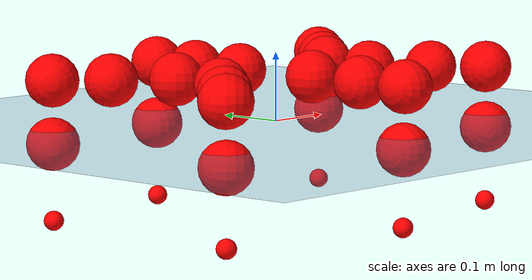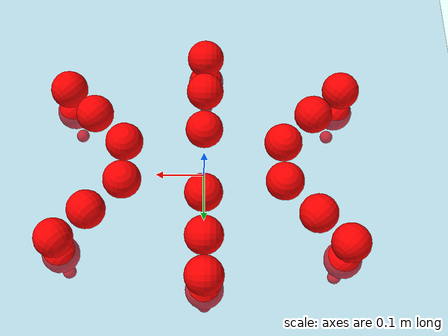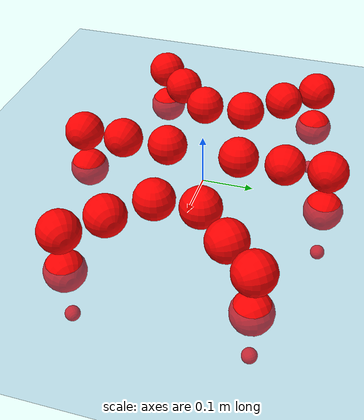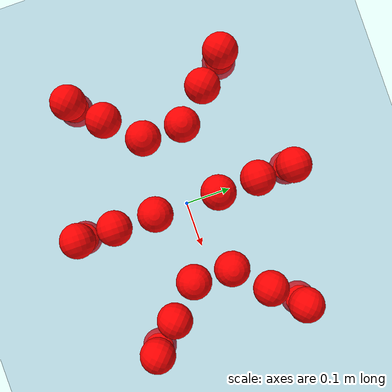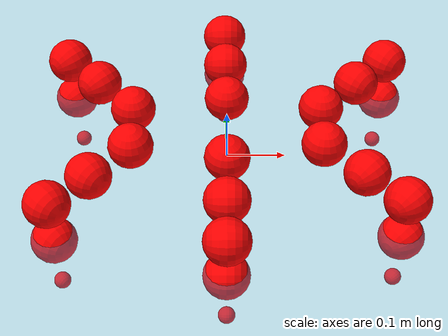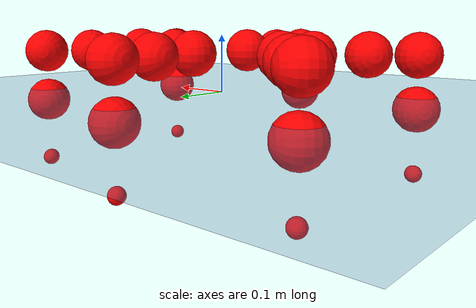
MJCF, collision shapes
<mujoco model="Golem">
  <compiler angle="radian" assetdir="assets" balanceinertia="true" inertiafromgeom="false"/>

  <option timestep="0.005" density="1.2" viscosity="2e-05"/>

  <size nkey="1"/>

  <visual>
    <quality shadowsize="8192"/>
    <map shadowclip="0.5"/>
  </visual>

  <default>
    <default class="/">
      <joint armature="0.01" damping="0.01" frictionloss="0.01"/>
      <geom contype="0" conaffinity="0" group="1" solref="-1000 -80"/>
      <site size="0.01 0.005 0.005" group="5"/>
      <general forcelimited="true" biastype="affine" gainprm="25" biasprm="0 -25 -0.5"/>
      <default class="visual">
        <geom type="mesh" group="2"/>
      </default>
      <default class="collision">
        <geom group="3"/>
      </default>
      <default class="foot">
        <geom size="0.01 0 0" condim="6" group="4" priority="1" solimp="0.015 1 0.01"/>
      </default>
      <default class="reward_collision_sphere">
        <geom group="5" rgba="1 0 0 1"/>
      </default>
    </default>
  </default>

  <asset>
    <texture type="skybox" colorspace="auto" name="//unnamed_texture_0" builtin="gradient" rgb1="0.95 0.95 0.95" rgb2="0.95 0.95 0.95" width="100" height="600"/>
    <texture type="2d" colorspace="auto" name="texplane" builtin="checker" rgb1="0.345 0.575 0.748" rgb2="0.345 0.575 0.748" markrgb="1 1 1" width="512" height="512"/>
    <material name="MatPlane" class="/" texture="texplane" texuniform="true" texrepeat="2 2" specular="0.9"/>
    <mesh name="body" class="/" file="body.stl" scale="0.001 0.001 0.001"/>
    <mesh name="coxa" class="/" file="coxa.stl" scale="0.001 0.001 0.001"/>
    <mesh name="femur" class="/" file="femur.stl" scale="0.001 0.001 0.001"/>
    <mesh name="tibia" class="/" file="tibia.stl" scale="0.001 0.001 0.001"/>
    <mesh name="tarsus" class="/" file="tarsus.stl" scale="0.001 0.001 0.001"/>
  </asset>

  <worldbody>
    <geom name="floor" class="/" size="100 100 0.125" type="plane" group="0" material="MatPlane"/>
    <light name="toplight_shadow" class="/" pos="0 0 5" dir="0.0990148 0.0990148 -0.990148" type="directional" ambient="0.04 0.04 0.04" diffuse="0.55 0.55 0.55" specular="0.12 0.12 0.12"/>
    <light name="toplight_fill" class="/" pos="0 0 5" dir="0.0990148 0.0990148 -0.990148" type="directional" castshadow="false" ambient="0.04 0.04 0.04" diffuse="0.3 0.3 0.3" specular="0.08 0.08 0.08"/>
    <body name="trunk" pos="0.000604557 0.000841076 0.000412164" quat="1 9.2595e-05 -0.000185313 -0.000425533">
      <inertial pos="-0.000280966 0.000365639 -0.00490535" quat="0.999992 -0.00295627 -0.00131189 -0.00225283" mass="3.2424" diaginertia="0.0113152 0.00267791 0.0151167"/>
      <joint name="//unnamed_joint_0" type="free"/>
      <geom name="//unnamed_geom_1" class="/" pos="0 0 0.0697171" quat="1 0 0 0" type="mesh" rgba="0.9 0.9 0.9 1" mesh="body"/>
      <site name="imu" class="/" pos="0.135614 -0.00306992 0.108423" size="0.00962258"/>
      <camera name="track" class="/" pos="0 -1.53903 0" quat="0.707107 0.707107 0 0" mode="trackcom"/>
      <camera name="ego_camera" class="/" pos="0.133631 0 0.108933" quat="-0.5 -0.5 0.5 0.5"/>
      <body name="coxa_RR" pos="-0.182503 -0.0645604 0.0693322" quat="0.382677 -0.000137614 -0.000419915 -0.923882">
        <inertial pos="-0.000222019 0.000507688 -4.00564e-05" quat="1 0.000384449 1.8451e-05 -0.000430345" mass="0.178144" diaginertia="0.011566 0.00269649 0.0149641"/>
        <joint name="coxa_joint_RR" class="/" pos="0 0 0" axis="-0.000638577 -0.00352614 -0.999994" stiffness="0.000141466" range="-3.14212 3.1562" armature="0.00941083" damping="0.011765" frictionloss="0.00951789"/>
        <geom name="//unnamed_geom_2" class="/" type="mesh" rgba="0.2 0.2 0.2 1" mesh="coxa"/>
        <geom name="//unnamed_geom_3" class="reward_collision_sphere" size="0.0384903" pos="-0.0308379 0 0"/>
        <body name="femur_RR" pos="0.0614272 0.00215299 -0.000467051" quat="0.499908 -0.500253 0.500027 0.499813">
          <inertial pos="-0.00146497 -2.85825e-05 -0.0019446" quat="0.999966 0.00143305 -0.00575954 0.0057778" mass="0.177849" diaginertia="0.0114831 0.00270047 0.015222"/>
          <joint name="femur_joint_RR" class="/" pos="0 0 0" axis="-0.00447318 0.00341873 -0.999984" range="-3.1347 3.13787" armature="0.00957084" damping="0" frictionloss="0.00954964"/>
          <geom name="//unnamed_geom_4" class="/" type="mesh" rgba="0.9 0.9 0.9 1" mesh="femur"/>
          <geom name="//unnamed_geom_5" class="reward_collision_sphere" size="0.0384903"/>
          <body name="tibia_RR" pos="0.00116377 -0.0839931 -0.00107249" quat="3.68199e-05 1 -0.000190999 -9.40116e-05">
            <inertial pos="7.62826e-05 -0.000170381 -0.000598403" quat="0.999991 0.000585892 -0.000990366 0.00413306" mass="0.180654" diaginertia="0.0117159 0.00275957 0.0157568"/>
            <joint name="tibia_joint_RR" class="/" pos="0 0 0" axis="-0.0018011 0.00139221 0.999997" range="-3.1228 3.1386" armature="0.0101" damping="0" frictionloss="0.00961517"/>
            <geom name="//unnamed_geom_6" class="/" type="mesh" rgba="0.2 0.2 0.2 1" mesh="tibia"/>
            <geom name="//unnamed_geom_7" class="reward_collision_sphere" size="0.0384903"/>
            <body name="tarsus_RR" pos="0.0898825 -0.000365896 -0.000194139" quat="1 8.09884e-06 -2.9297e-05 6.25492e-06">
              <inertial pos="0.0635419 0.000466108 -0.000333483" quat="0.493789 0.505335 0.50108 0.499727" mass="0.184061" diaginertia="0.0114296 0.00270862 0.0156082"/>
              <joint name="tarsus_joint_RR" class="/" pos="0 0 0" axis="0.00208964 -0.00185844 0.999996" range="-3.13645 3.15103" armature="0.0100326" damping="0.0416731" frictionloss="0.00951385"/>
              <geom name="//unnamed_geom_8" class="/" type="mesh" rgba="0.9 0.9 0.9 1" mesh="tarsus"/>
              <geom name="foot_1" class="foot" size="0.00950345" pos="0.115128 0 0" quat="0 -0.707107 0 0.707107"/>
              <geom name="//unnamed_geom_10" class="reward_collision_sphere" size="0.0384903"/>
              <geom name="//unnamed_geom_11" class="reward_collision_sphere" size="0.0144339" pos="0.110503 0 0"/>
              <site name="foot_1" class="foot" pos="0.115128 0 0" quat="0 -0.707107 0 0.707107" size="0.00962258"/>
            </body>
          </body>
        </body>
      </body>
      <body name="coxa_RM" pos="-0.000482062 -0.102239 0.0700046" quat="0.707169 -0.000451819 0.00059903 -0.707044">
        <inertial pos="-5.18799e-05 4.98567e-05 -0.000773191" quat="1 -0.00053101 0.000120337 0.000350061" mass="0.178388" diaginertia="0.0113512 0.00269551 0.0154283"/>
        <joint name="coxa_joint_RM" class="/" pos="0 0 0" axis="3.84825e-05 1.27782e-05 -1" range="-3.14536 3.12871" armature="0.00987142" damping="0.0103783" frictionloss="0.0100777"/>
        <geom name="//unnamed_geom_12" class="/" type="mesh" rgba="0.2 0.2 0.2 1" mesh="coxa"/>
        <geom name="//unnamed_geom_13" class="reward_collision_sphere" size="0.0384903" pos="-0.0308379 0 0"/>
        <body name="femur_RM" pos="0.0606056 -0.000770552 -0.00102799" quat="0.499958 -0.49998 0.500225 0.499837">
          <inertial pos="0.00118844 -5.16498e-06 0.000210107" quat="0.999972 -0.00628132 -0.000290047 -0.00413177" mass="0.178223" diaginertia="0.0114797 0.00269364 0.0152582"/>
          <joint name="femur_joint_RM" class="/" pos="0 0 0" axis="0.00119767 0.000197357 -0.999999" range="-3.14589 3.13466" armature="0.00926013" damping="0.00927241" frictionloss="0.0094523"/>
          <geom name="//unnamed_geom_14" class="/" type="mesh" rgba="0.9 0.9 0.9 1" mesh="femur"/>
          <geom name="//unnamed_geom_15" class="reward_collision_sphere" size="0.0384903"/>
          <body name="tibia_RM" pos="-0.000271982 -0.0823231 -0.000552515" quat="9.39315e-05 1 9.58253e-05 -2.86699e-05">
            <inertial pos="-0.00145211 -0.000822244 0.000807984" quat="0.999997 -0.00231254 -0.000382078 -0.0011065" mass="0.176205" diaginertia="0.0114922 0.00270711 0.015059"/>
            <joint name="tibia_joint_RM" class="/" pos="0 0 0" axis="-0.00475937 -0.00296164 0.999984" stiffness="0.000768681" range="-3.14512 3.15558" armature="0.0096967" damping="0.0134713" frictionloss="0.010004"/>
            <geom name="//unnamed_geom_16" class="/" type="mesh" rgba="0.2 0.2 0.2 1" mesh="tibia"/>
            <geom name="//unnamed_geom_17" class="reward_collision_sphere" size="0.0384903"/>
            <body name="tarsus_RM" pos="0.088895 -0.00124976 0.000878736" quat="1 -9.50956e-05 2.93909e-05 -1.81367e-05">
              <inertial pos="0.0614008 -0.000242295 0.00015274" quat="0.500195 0.499183 0.500998 0.499622" mass="0.177633" diaginertia="0.0112943 0.00267449 0.0152191"/>
              <joint name="tarsus_joint_RM" class="/" pos="0 0 0" axis="-0.000131189 -4.74321e-05 1" range="-3.13829 3.13995" armature="0.00957562" damping="0.00772845" frictionloss="0.00964683"/>
              <geom name="//unnamed_geom_18" class="/" type="mesh" rgba="0.9 0.9 0.9 1" mesh="tarsus"/>
              <geom name="foot_2" class="foot" size="0.00927904" pos="0.115128 0 0" quat="0 -0.707107 0 0.707107"/>
              <geom name="//unnamed_geom_20" class="reward_collision_sphere" size="0.0384903"/>
              <geom name="//unnamed_geom_21" class="reward_collision_sphere" size="0.0144339" pos="0.110503 0 0"/>
              <site name="foot_2" class="foot" pos="0.115128 0 0" quat="0 -0.707107 0 0.707107" size="0.00962258"/>
            </body>
          </body>
        </body>
      </body>
      <body name="coxa_RF" pos="0.183071 -0.0632634 0.0693714" quat="0.923868 -4.24957e-05 0.000189921 -0.382712">
        <inertial pos="-0.00158725 0.000331578 0.000257158" quat="0.999997 -0.00015062 0.00224053 -0.000695085" mass="0.180837" diaginertia="0.0112417 0.00263038 0.0151913"/>
        <joint name="coxa_joint_RF" class="/" pos="0 0 0" axis="0.000269629 -0.00410543 -0.999992" stiffness="0.000746525" range="-3.1203 3.13729" armature="0.00956839" damping="0.00861982" frictionloss="0.00989512"/>
        <geom name="//unnamed_geom_22" class="/" type="mesh" rgba="0.2 0.2 0.2 1" mesh="coxa"/>
        <geom name="//unnamed_geom_23" class="reward_collision_sphere" size="0.0384903" pos="-0.0308379 0 0"/>
        <body name="femur_RF" pos="0.0604452 -0.000821781 -0.000212194" quat="0.500255 -0.499973 0.49968 0.500092">
          <inertial pos="-0.000849025 0.0012563 -0.000841695" quat="1 0.000816237 -0.00019796 -4.96698e-05" mass="0.179357" diaginertia="0.011382 0.00268449 0.0152543"/>
          <joint name="femur_joint_RF" class="/" pos="0 0 0" axis="0.000448873 -0.00325513 -0.999995" range="-3.12866 3.14832" armature="0.00964804" damping="0.0104942" frictionloss="0.00964627"/>
          <geom name="//unnamed_geom_24" class="/" type="mesh" rgba="0.9 0.9 0.9 1" mesh="femur"/>
          <geom name="//unnamed_geom_25" class="reward_collision_sphere" size="0.0384903"/>
          <body name="tibia_RF" pos="0.000828352 -0.0823451 -0.000413242" quat="-0.000141052 1 -6.76289e-05 -0.000151909">
            <inertial pos="-0.000822868 -0.000193204 0.00113796" quat="0.99999 -0.0010725 0.0043039 -0.000509531" mass="0.177604" diaginertia="0.0114489 0.00270176 0.0152928"/>
            <joint name="tibia_joint_RF" class="/" pos="0 0 0" axis="0.00380858 -0.0026142 0.999989" range="-3.14265 3.14163" armature="0.00949695" damping="0" frictionloss="0.00954674"/>
            <geom name="//unnamed_geom_26" class="/" type="mesh" rgba="0.2 0.2 0.2 1" mesh="tibia"/>
            <geom name="//unnamed_geom_27" class="reward_collision_sphere" size="0.0384903"/>
            <body name="tarsus_RF" pos="0.0903735 0.000624696 -0.000260032" quat="1 -5.77249e-05 0.000167209 -2.28808e-05">
              <inertial pos="0.0598231 9.6149e-05 0.000206056" quat="0.500715 0.500092 0.499385 0.499808" mass="0.176747" diaginertia="0.0113438 0.00275598 0.015294"/>
              <joint name="tarsus_joint_RF" class="/" pos="0 0 0" axis="-9.82402e-05 0.00820464 0.999966" range="-3.12053 3.13608" armature="0.00962358" damping="0" frictionloss="0.0104979"/>
              <geom name="//unnamed_geom_28" class="/" type="mesh" rgba="0.9 0.9 0.9 1" mesh="tarsus"/>
              <geom name="foot_3" class="foot" size="0.010034" pos="0.115128 0 0" quat="0 -0.707107 0 0.707107"/>
              <geom name="//unnamed_geom_30" class="reward_collision_sphere" size="0.0384903"/>
              <geom name="//unnamed_geom_31" class="reward_collision_sphere" size="0.0144339" pos="0.110503 0 0"/>
              <site name="foot_3" class="foot" pos="0.115128 0 0" quat="0 -0.707107 0 0.707107" size="0.00962258"/>
            </body>
          </body>
        </body>
      </body>
      <body name="coxa_LR" pos="-0.182762 0.0661654 0.071019" quat="0.382794 0.00010281 -0.000352951 0.923834">
        <inertial pos="-0.000351368 -0.000233848 -0.0011071" quat="1 8.00153e-06 -4.76242e-05 -0.000114409" mass="0.172892" diaginertia="0.0111971 0.00263437 0.0150101"/>
        <joint name="coxa_joint_LR" class="/" pos="0 0 0" axis="0.000302068 0.000417126 -1" range="-3.13283 3.17278" armature="0.00964394" damping="0.00582574" frictionloss="0.00880947"/>
        <geom name="//unnamed_geom_32" class="/" type="mesh" rgba="0.2 0.2 0.2 1" mesh="coxa"/>
        <geom name="//unnamed_geom_33" class="reward_collision_sphere" size="0.0384903" pos="-0.0308379 0 0"/>
        <body name="femur_LR" pos="0.0614738 -0.00307334 -0.00152843" quat="0.500004 -0.500003 0.499997 0.499996">
          <inertial pos="0.000373989 -0.00048607 -0.000106646" quat="0.99999 -0.00209173 0.00394801 -0.000277349" mass="0.180262" diaginertia="0.0117407 0.00279204 0.015554"/>
          <joint name="femur_joint_LR" class="/" pos="0 0 0" axis="-0.00267394 0.00279646 0.999993" range="-3.1403 3.13878" armature="0.00939844" damping="0.00887112" frictionloss="0.00979467"/>
          <geom name="//unnamed_geom_34" class="/" type="mesh" rgba="0.9 0.9 0.9 1" mesh="femur"/>
          <geom name="//unnamed_geom_35" class="reward_collision_sphere" size="0.0384903"/>
          <body name="tibia_LR" pos="9.47202e-05 -0.0834802 -0.00126108" quat="-1.56958e-05 1 -8.26951e-06 4.47348e-06">
            <inertial pos="-0.000928126 0.00160805 0.000117694" quat="1 0.000586814 0.000360028 0.000498831" mass="0.178603" diaginertia="0.0117217 0.00270563 0.0149927"/>
            <joint name="tibia_joint_LR" class="/" pos="0 0 0" axis="-0.000311166 -0.000104962 -1" range="-3.14099 3.13681" armature="0.00937198" damping="0.0013245" frictionloss="0.00918609"/>
            <geom name="//unnamed_geom_36" class="/" type="mesh" rgba="0.2 0.2 0.2 1" mesh="tibia"/>
            <geom name="//unnamed_geom_37" class="reward_collision_sphere" size="0.0384903"/>
            <body name="tarsus_LR" pos="0.0914343 -0.000168772 0.00243109" quat="1 0.000196449 -0.000495765 7.42197e-05">
              <inertial pos="0.0634117 0.00120517 0.000805092" quat="0.498442 0.504112 0.49957 0.497852" mass="0.172858" diaginertia="0.0111173 0.00263695 0.0149709"/>
              <joint name="tarsus_joint_LR" class="/" pos="0 0 0" axis="-0.00152574 -0.00117915 -0.999998" range="-3.14864 3.13292" armature="0.00873692" damping="0.0287822" frictionloss="0.00994185"/>
              <geom name="//unnamed_geom_38" class="/" type="mesh" rgba="0.9 0.9 0.9 1" mesh="tarsus"/>
              <geom name="foot_4" class="foot" size="0.00941207" pos="0.115128 0 0" quat="0.707107 0 -0.707107 0"/>
              <geom name="//unnamed_geom_40" class="reward_collision_sphere" size="0.0384903"/>
              <geom name="//unnamed_geom_41" class="reward_collision_sphere" size="0.0144339" pos="0.110503 0 0"/>
              <site name="foot_4" class="foot" pos="0.115128 0 0" quat="0.707107 0 -0.707107 0" size="0.00962258"/>
            </body>
          </body>
        </body>
      </body>
      <body name="coxa_LM" pos="-0.000348187 0.100695 0.0699305" quat="0.706696 -0.000447668 0.000343076 0.707517">
        <inertial pos="0.000926669 -0.000996289 0.00190265" quat="0.999998 -0.00117255 -0.000318818 0.00150333" mass="0.177825" diaginertia="0.0113088 0.00268338 0.0152042"/>
        <joint name="coxa_joint_LM" class="/" pos="0 0 0" axis="0.00244623 -0.00309855 -0.999992" range="-3.13445 3.14293" armature="0.01048" damping="0" frictionloss="0.00938021"/>
        <geom name="//unnamed_geom_42" class="/" type="mesh" rgba="0.2 0.2 0.2 1" mesh="coxa"/>
        <geom name="//unnamed_geom_43" class="reward_collision_sphere" size="0.0384903" pos="-0.0308379 0 0"/>
        <body name="femur_LM" pos="0.0581406 0.00153176 -0.000833628" quat="0.499937 -0.500106 0.499831 0.500126">
          <inertial pos="-0.000486197 -0.000185914 -0.00100528" quat="0.999991 -0.00218238 0.000556915 0.00359949" mass="0.179263" diaginertia="0.0113894 0.0027019 0.0152539"/>
          <joint name="femur_joint_LM" class="/" pos="0 0 0" axis="-0.00408616 -0.000774033 0.999991" range="-3.15372 3.13513" armature="0.00930934" damping="0.00574222" frictionloss="0.00964974"/>
          <geom name="//unnamed_geom_44" class="/" type="mesh" rgba="0.9 0.9 0.9 1" mesh="femur"/>
          <geom name="//unnamed_geom_45" class="reward_collision_sphere" size="0.0384903"/>
          <body name="tibia_LM" pos="-0.000222199 -0.0803051 0.000896606" quat="-3.71809e-05 1 -4.13699e-05 -1.55485e-05">
            <inertial pos="0.00136661 -0.00143801 0.00186518" quat="1 0.000104547 -0.000212962 -0.000632831" mass="0.17867" diaginertia="0.01164 0.00267438 0.0153276"/>
            <joint name="tibia_joint_LM" class="/" pos="0 0 0" axis="0.00486 0.00343044 -0.999982" range="-3.14575 3.14315" armature="0.00942329" damping="0.00167101" frictionloss="0.00963601"/>
            <geom name="//unnamed_geom_46" class="/" type="mesh" rgba="0.2 0.2 0.2 1" mesh="tibia"/>
            <geom name="//unnamed_geom_47" class="reward_collision_sphere" size="0.0384903"/>
            <body name="tarsus_LM" pos="0.0924757 -0.000643864 -0.000607832" quat="1 0.000119523 -0.000218953 -0.000129728">
              <inertial pos="0.0619143 -0.000161136 -0.000774548" quat="0.500518 0.498286 0.500889 0.500304" mass="0.181866" diaginertia="0.0115204 0.00282226 0.015824"/>
              <joint name="tarsus_joint_LM" class="/" pos="0 0 0" axis="-0.000232807 -0.000871242 -1" range="-3.18006 3.14861" armature="0.00967005" damping="0" frictionloss="0.0095838"/>
              <geom name="//unnamed_geom_48" class="/" type="mesh" rgba="0.9 0.9 0.9 1" mesh="tarsus"/>
              <geom name="foot_5" class="foot" size="0.0097353" pos="0.115128 0 0" quat="0.707107 0 -0.707107 0"/>
              <geom name="//unnamed_geom_50" class="reward_collision_sphere" size="0.0384903"/>
              <geom name="//unnamed_geom_51" class="reward_collision_sphere" size="0.0144339" pos="0.110503 0 0"/>
              <site name="foot_5" class="foot" pos="0.115128 0 0" quat="0.707107 0 -0.707107 0" size="0.00962258"/>
            </body>
          </body>
        </body>
      </body>
      <body name="coxa_LF" pos="0.183105 0.0656317 0.0711581" quat="0.923714 -2.24738e-05 -0.000414919 0.383083">
        <inertial pos="-3.68973e-05 0.00174461 0.000736115" quat="0.999999 -0.000674705 -0.000655115 -0.000584828" mass="0.181594" diaginertia="0.0118347 0.002757 0.0156545"/>
        <joint name="coxa_joint_LF" class="/" pos="0 0 0" axis="-0.00138997 0.000963454 -0.999999" stiffness="0.000758205" range="-3.13917 3.14336" armature="0.0105856" damping="0.00226834" frictionloss="0.00946558"/>
        <geom name="//unnamed_geom_52" class="/" type="mesh" rgba="0.2 0.2 0.2 1" mesh="coxa"/>
        <geom name="//unnamed_geom_53" class="reward_collision_sphere" size="0.0384903" pos="-0.0308379 0 0"/>
        <body name="femur_LF" pos="0.0615784 -0.00151634 -0.00224013" quat="0.500115 -0.500102 0.499959 0.499824">
          <inertial pos="-0.000513894 -0.000248683 0.0018589" quat="0.999993 0.00184132 -0.00333264 -0.000461528" mass="0.179236" diaginertia="0.0115882 0.00276619 0.0153107"/>
          <joint name="femur_joint_LF" class="/" pos="0 0 0" axis="-0.00121818 -0.00160676 0.999998" range="-3.13854 3.10866" armature="0.00954357" damping="0" frictionloss="0.00963792"/>
          <geom name="//unnamed_geom_54" class="/" type="mesh" rgba="0.9 0.9 0.9 1" mesh="femur"/>
          <geom name="//unnamed_geom_55" class="reward_collision_sphere" size="0.0384903"/>
          <body name="tibia_LF" pos="0.000724068 -0.0828163 0.00113852" quat="6.67525e-05 1 -0.000226389 0.000239053">
            <inertial pos="-4.77454e-05 -0.00114101 0.00010702" quat="0.999997 -0.00152114 0.000981562 -0.00186194" mass="0.179196" diaginertia="0.0116265 0.00270312 0.0154735"/>
            <joint name="tibia_joint_LF" class="/" pos="0 0 0" axis="0.00492931 0.00151083 -0.999987" range="-3.14941 3.13996" armature="0.00932754" damping="6.48874e-05" frictionloss="0.0101518"/>
            <geom name="//unnamed_geom_56" class="/" type="mesh" rgba="0.2 0.2 0.2 1" mesh="tibia"/>
            <geom name="//unnamed_geom_57" class="reward_collision_sphere" size="0.0384903"/>
            <body name="tarsus_LF" pos="0.0909176 -0.000340323 0.000389301" quat="0.999999 0.000863949 -0.00036673 0.000373055">
              <inertial pos="0.0636701 0.000122146 0.000546919" quat="0.500004 0.499392 0.501147 0.499456" mass="0.179006" diaginertia="0.0111931 0.00263588 0.0152176"/>
              <joint name="tarsus_joint_LF" class="/" pos="0 0 0" axis="0.00220369 0.0110106 -0.999937" stiffness="0.0261935" range="-3.15056 3.12772" armature="0.00932072" damping="0.0226362" frictionloss="0.00915207"/>
              <geom name="//unnamed_geom_58" class="/" type="mesh" rgba="0.9 0.9 0.9 1" mesh="tarsus"/>
              <geom name="foot_6" class="foot" size="0.00931802" pos="0.115128 0 0" quat="0.707107 0 -0.707107 0"/>
              <geom name="//unnamed_geom_60" class="reward_collision_sphere" size="0.0384903"/>
              <geom name="//unnamed_geom_61" class="reward_collision_sphere" size="0.0144339" pos="0.110503 0 0"/>
              <site name="foot_6" class="foot" pos="0.115128 0 0" quat="0.707107 0 -0.707107 0" size="0.00962258"/>
            </body>
          </body>
        </body>
      </body>
    </body>
  </worldbody>

  <contact>
    <pair class="/" geom1="floor" geom2="foot_1" name="//unnamed_contact_0"/>
    <pair class="/" geom1="floor" geom2="foot_2" name="//unnamed_contact_1"/>
    <pair class="/" geom1="floor" geom2="foot_3" name="//unnamed_contact_2"/>
    <pair class="/" geom1="floor" geom2="foot_4" name="//unnamed_contact_3"/>
    <pair class="/" geom1="floor" geom2="foot_5" name="//unnamed_contact_4"/>
    <pair class="/" geom1="floor" geom2="foot_6" name="//unnamed_contact_5"/>
  </contact>

  <actuator>
    <general name="coxa_joint_RR" class="/" joint="coxa_joint_RR" forcerange="-6.66077 6.66077" gainprm="23.2968" biasprm="0 -23.2968 -0.508611"/>
    <general name="femur_joint_RR" class="/" joint="femur_joint_RR" forcerange="-6.76655 6.76655" gainprm="23.2968" biasprm="0 -23.2968 -0.508611"/>
    <general name="tibia_joint_RR" class="/" joint="tibia_joint_RR" forcerange="-6.55978 6.55978" gainprm="23.2968" biasprm="0 -23.2968 -0.508611"/>
    <general name="tarsus_joint_RR" class="/" joint="tarsus_joint_RR" forcerange="-6.78145 6.78145" gainprm="23.2968" biasprm="0 -23.2968 -0.508611"/>
    <general name="coxa_joint_RM" class="/" joint="coxa_joint_RM" forcerange="-7.04069 7.04069" gainprm="23.2968" biasprm="0 -23.2968 -0.508611"/>
    <general name="femur_joint_RM" class="/" joint="femur_joint_RM" forcerange="-7.03916 7.03916" gainprm="23.2968" biasprm="0 -23.2968 -0.508611"/>
    <general name="tibia_joint_RM" class="/" joint="tibia_joint_RM" forcerange="-6.77326 6.77326" gainprm="23.2968" biasprm="0 -23.2968 -0.508611"/>
    <general name="tarsus_joint_RM" class="/" joint="tarsus_joint_RM" forcerange="-7.45899 7.45899" gainprm="23.2968" biasprm="0 -23.2968 -0.508611"/>
    <general name="coxa_joint_RF" class="/" joint="coxa_joint_RF" forcerange="-7.08605 7.08605" gainprm="23.2968" biasprm="0 -23.2968 -0.508611"/>
    <general name="femur_joint_RF" class="/" joint="femur_joint_RF" forcerange="-7.1127 7.1127" gainprm="23.2968" biasprm="0 -23.2968 -0.508611"/>
    <general name="tibia_joint_RF" class="/" joint="tibia_joint_RF" forcerange="-7.36217 7.36217" gainprm="23.2968" biasprm="0 -23.2968 -0.508611"/>
    <general name="tarsus_joint_RF" class="/" joint="tarsus_joint_RF" forcerange="-6.76726 6.76726" gainprm="23.2968" biasprm="0 -23.2968 -0.508611"/>
    <general name="coxa_joint_LR" class="/" joint="coxa_joint_LR" forcerange="-7.05636 7.05636" gainprm="23.2968" biasprm="0 -23.2968 -0.508611"/>
    <general name="femur_joint_LR" class="/" joint="femur_joint_LR" forcerange="-6.93485 6.93485" gainprm="23.2968" biasprm="0 -23.2968 -0.508611"/>
    <general name="tibia_joint_LR" class="/" joint="tibia_joint_LR" forcerange="-7.28061 7.28061" gainprm="23.2968" biasprm="0 -23.2968 -0.508611"/>
    <general name="tarsus_joint_LR" class="/" joint="tarsus_joint_LR" forcerange="-7.16447 7.16447" gainprm="23.2968" biasprm="0 -23.2968 -0.508611"/>
    <general name="coxa_joint_LM" class="/" joint="coxa_joint_LM" forcerange="-7.27792 7.27792" gainprm="23.2968" biasprm="0 -23.2968 -0.508611"/>
    <general name="femur_joint_LM" class="/" joint="femur_joint_LM" forcerange="-7.08865 7.08865" gainprm="23.2968" biasprm="0 -23.2968 -0.508611"/>
    <general name="tibia_joint_LM" class="/" joint="tibia_joint_LM" forcerange="-7.08032 7.08032" gainprm="23.2968" biasprm="0 -23.2968 -0.508611"/>
    <general name="tarsus_joint_LM" class="/" joint="tarsus_joint_LM" forcerange="-6.95528 6.95528" gainprm="23.2968" biasprm="0 -23.2968 -0.508611"/>
    <general name="coxa_joint_LF" class="/" joint="coxa_joint_LF" forcerange="-7.21814 7.21814" gainprm="23.2968" biasprm="0 -23.2968 -0.508611"/>
    <general name="femur_joint_LF" class="/" joint="femur_joint_LF" forcerange="-7.01033 7.01033" gainprm="23.2968" biasprm="0 -23.2968 -0.508611"/>
    <general name="tibia_joint_LF" class="/" joint="tibia_joint_LF" forcerange="-6.89748 6.89748" gainprm="23.2968" biasprm="0 -23.2968 -0.508611"/>
    <general name="tarsus_joint_LF" class="/" joint="tarsus_joint_LF" forcerange="-7.27218 7.27218" gainprm="23.2968" biasprm="0 -23.2968 -0.508611"/>
  </actuator>

  <sensor>
    <gyro site="imu" name="imu_angular_velocity"/>
    <velocimeter site="imu" name="imu_linear_velocity"/>
    <framelinvel objtype="site" objname="foot_1" name="foot_1_global_linear_velocity"/>
    <framelinvel objtype="site" objname="foot_2" name="foot_2_global_linear_velocity"/>
    <framelinvel objtype="site" objname="foot_3" name="foot_3_global_linear_velocity"/>
    <framelinvel objtype="site" objname="foot_4" name="foot_4_global_linear_velocity"/>
    <framelinvel objtype="site" objname="foot_5" name="foot_5_global_linear_velocity"/>
    <framelinvel objtype="site" objname="foot_6" name="foot_6_global_linear_velocity"/>
  </sensor>

  <keyframe>
    <key name="home" qpos="0 0 0.1457 1 0 0 0 0 0 0 0 0 0 0 0 0 0 0 0 0 0 0 0 0 0 0 0 0 0 0 0"/>
  </keyframe>
</mujoco>
